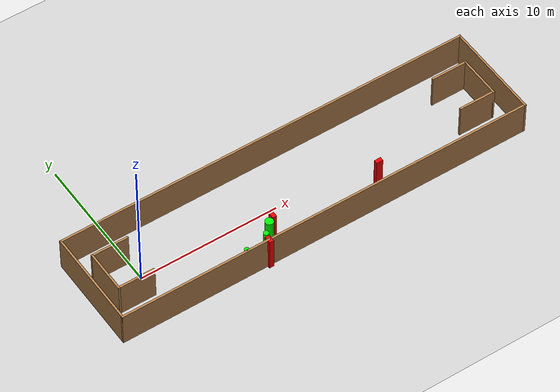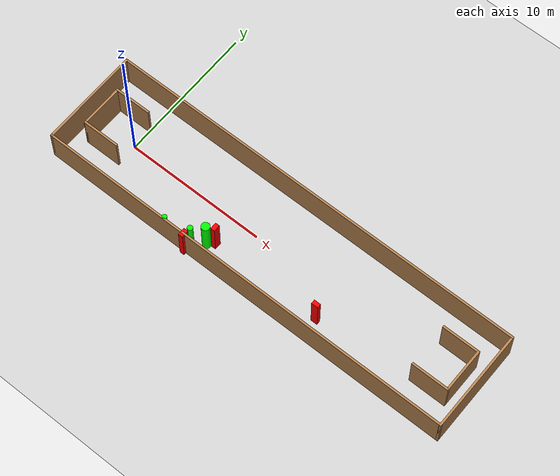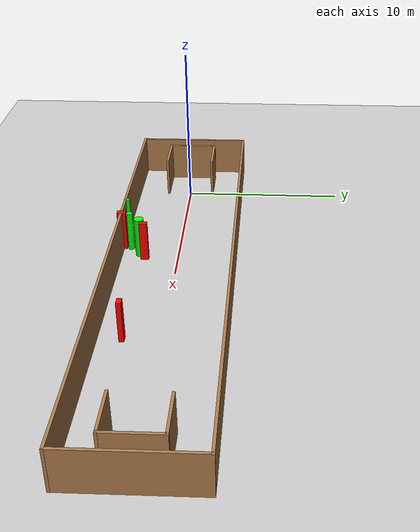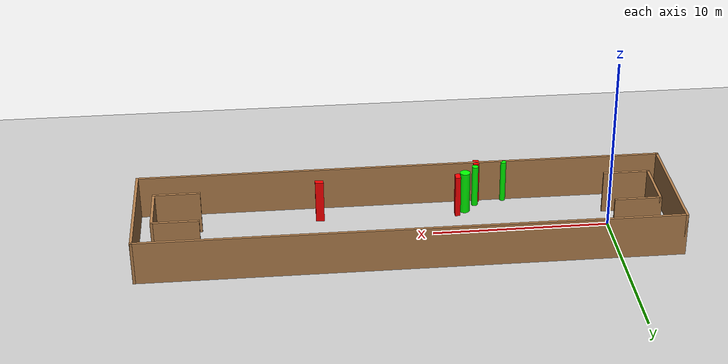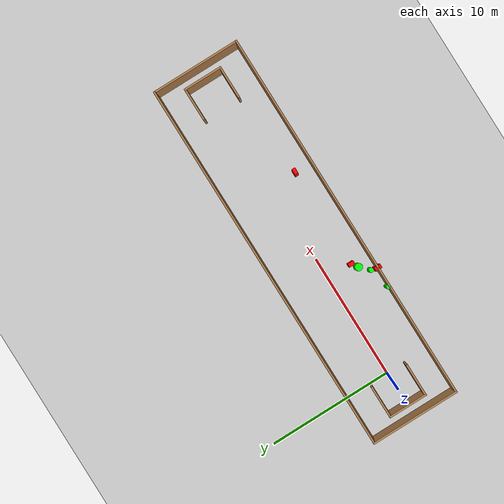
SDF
<sdf version="1.7">
 <world name="default">
  <light name="sun" type="directional">
   <pose>0 0 10 0 -0 0</pose>
   <diffuse>0.8 0.8 0.8 1</diffuse>
   <specular>0.2 0.2 0.2 1</specular>
   <attenuation>
    <range>1000</range>
    <constant>0.9</constant>
    <linear>0.01</linear>
    <quadratic>0.001</quadratic>
   </attenuation>
   <direction>-0.5 0.1 -0.9</direction>
   <spot><inner_angle>0</inner_angle><outer_angle>0</outer_angle><falloff>0</falloff></spot>
  </light>
  <model name="ground_plane">
   <static>1</static>
   <link name="link">
    <collision name="collision">
     <geometry><plane><normal>0 0 1</normal><size>100 100</size></plane></geometry>
     <surface>
      <contact><collide_bitmask>65535</collide_bitmask></contact>
      <friction><ode><mu>100</mu><mu2>50</mu2></ode></friction>
     </surface>
    </collision>
    <visual name="visual">
     <cast_shadows>0</cast_shadows>
     <geometry><plane><normal>0 0 1</normal><size>100 100</size></plane></geometry>
     <material>
      <script><uri>file://media/materials/scripts/gazebo.material</uri><name>Gazebo/Grey</name></script>
     </material>
    </visual>
   </link>
  </model>
  <gravity>0 0 -9.8</gravity>
  <magnetic_field>6e-06 2.3e-05 -4.2e-05</magnetic_field>
  <atmosphere type="adiabatic"/>
  <physics type="ode">
   <max_step_size>0.001</max_step_size>
   <real_time_factor>1</real_time_factor>
   <real_time_update_rate>1000</real_time_update_rate>
  </physics>
  <scene><ambient>0.4 0.4 0.4 1</ambient><background>0.7 0.7 0.7 1</background><shadows>1</shadows></scene>
  <spherical_coordinates>
   <surface_model>EARTH_WGS84</surface_model>
   <latitude_deg>0</latitude_deg>
   <longitude_deg>0</longitude_deg>
   <elevation>0</elevation>
   <heading_deg>0</heading_deg>
  </spherical_coordinates>
  <model name="my_base_walls">
   <link name="Wall_0">
    <collision name="Wall_0_Collision">
     <geometry><box><size>7.15 0.15 2.5</size></box></geometry>
     <pose>0 0 1.25 0 -0 0</pose>
    </collision>
    <visual name="Wall_0_Visual">
     <pose>0 0 1.25 0 -0 0</pose>
     <geometry><box><size>7.15 0.15 2.5</size></box></geometry>
     <material>
      <script><uri>file://media/materials/scripts/gazebo.material</uri><name>Gazebo/Wood</name></script>
      <ambient>1 1 1 1</ambient>
     </material>
     <meta><layer>0</layer></meta>
    </visual>
    <pose>-15 0 0 0 -0 1.5708</pose>
   </link>
   <link name="Wall_10">
    <collision name="Wall_10_Collision">
     <geometry><box><size>2.65 0.15 2.5</size></box></geometry>
     <pose>0 0 1.25 0 -0 0</pose>
    </collision>
    <visual name="Wall_10_Visual">
     <pose>0 0 1.25 0 -0 0</pose>
     <geometry><box><size>2.65 0.15 2.5</size></box></geometry>
     <material>
      <script><uri>file://media/materials/scripts/gazebo.material</uri><name>Gazebo/Wood</name></script>
      <ambient>1 1 1 1</ambient>
     </material>
     <meta><layer>0</layer></meta>
    </visual>
    <pose>-12.75 -1.5 0 0 -0 0</pose>
   </link>
   <link name="Wall_12">
    <collision name="Wall_12_Collision">
     <geometry><box><size>2.65 0.15 2.5</size></box></geometry>
     <pose>0 0 1.25 0 -0 0</pose>
    </collision>
    <visual name="Wall_12_Visual">
     <pose>0 0 1.25 0 -0 0</pose>
     <geometry><box><size>2.65 0.15 2.5</size></box></geometry>
     <material>
      <script><uri>file://media/materials/scripts/gazebo.material</uri><name>Gazebo/Wood</name></script>
      <ambient>1 1 1 1</ambient>
     </material>
     <meta><layer>0</layer></meta>
    </visual>
    <pose>-12.75 1.5 0 0 -0 0</pose>
   </link>
   <link name="Wall_14">
    <collision name="Wall_14_Collision">
     <geometry><box><size>3.15 0.15 2.5</size></box></geometry>
     <pose>0 0 1.25 0 -0 0</pose>
    </collision>
    <visual name="Wall_14_Visual">
     <pose>0 0 1.25 0 -0 0</pose>
     <geometry><box><size>3.15 0.15 2.5</size></box></geometry>
     <material>
      <script><uri>file://media/materials/scripts/gazebo.material</uri><name>Gazebo/Wood</name></script>
      <ambient>1 1 1 1</ambient>
     </material>
     <meta><layer>0</layer></meta>
    </visual>
    <pose>14 0 0 0 -0 -1.5708</pose>
   </link>
   <link name="Wall_15">
    <collision name="Wall_15_Collision">
     <geometry><box><size>2.65 0.15 2.5</size></box></geometry>
     <pose>0 0 1.25 0 -0 0</pose>
    </collision>
    <visual name="Wall_15_Visual">
     <pose>0 0 1.25 0 -0 0</pose>
     <geometry><box><size>2.65 0.15 2.5</size></box></geometry>
     <material>
      <script><uri>file://media/materials/scripts/gazebo.material</uri><name>Gazebo/Wood</name></script>
      <ambient>1 1 1 1</ambient>
     </material>
     <meta><layer>0</layer></meta>
    </visual>
    <pose>12.75 -1.5 0 0 -0 3.14159</pose>
   </link>
   <link name="Wall_17">
    <collision name="Wall_17_Collision">
     <geometry><box><size>2.65 0.15 2.5</size></box></geometry>
     <pose>0 0 1.25 0 -0 0</pose>
    </collision>
    <visual name="Wall_17_Visual">
     <pose>0 0 1.25 0 -0 0</pose>
     <geometry><box><size>2.65 0.15 2.5</size></box></geometry>
     <material>
      <script><uri>file://media/materials/scripts/gazebo.material</uri><name>Gazebo/Wood</name></script>
      <ambient>1 1 1 1</ambient>
     </material>
     <meta><layer>0</layer></meta>
    </visual>
    <pose>12.75 1.5 0 0 -0 3.14159</pose>
   </link>
   <link name="Wall_2">
    <collision name="Wall_2_Collision">
     <geometry><box><size>30.15 0.15 2.5</size></box></geometry>
     <pose>0 0 1.25 0 -0 0</pose>
    </collision>
    <visual name="Wall_2_Visual">
     <pose>0 0 1.25 0 -0 0</pose>
     <geometry><box><size>30.15 0.15 2.5</size></box></geometry>
     <material>
      <script><uri>file://media/materials/scripts/gazebo.material</uri><name>Gazebo/Wood</name></script>
      <ambient>1 1 1 1</ambient>
     </material>
     <meta><layer>0</layer></meta>
    </visual>
    <pose>-0 -3.5 0 0 -0 0</pose>
   </link>
   <link name="Wall_4">
    <collision name="Wall_4_Collision">
     <geometry><box><size>30.15 0.15 2.5</size></box></geometry>
     <pose>0 0 1.25 0 -0 0</pose>
    </collision>
    <visual name="Wall_4_Visual">
     <pose>0 0 1.25 0 -0 0</pose>
     <geometry><box><size>30.15 0.15 2.5</size></box></geometry>
     <material>
      <script><uri>file://media/materials/scripts/gazebo.material</uri><name>Gazebo/Wood</name></script>
      <ambient>1 1 1 1</ambient>
     </material>
     <meta><layer>0</layer></meta>
    </visual>
    <pose>-0 3.5 0 0 -0 0</pose>
   </link>
   <link name="Wall_6">
    <collision name="Wall_6_Collision">
     <geometry><box><size>7.15 0.15 2.5</size></box></geometry>
     <pose>0 0 1.25 0 -0 0</pose>
    </collision>
    <visual name="Wall_6_Visual">
     <pose>0 0 1.25 0 -0 0</pose>
     <geometry><box><size>7.15 0.15 2.5</size></box></geometry>
     <material>
      <script><uri>file://media/materials/scripts/gazebo.material</uri><name>Gazebo/Wood</name></script>
      <ambient>1 1 1 1</ambient>
     </material>
     <meta><layer>0</layer></meta>
    </visual>
    <pose>15 0 0 0 -0 -1.5708</pose>
   </link>
   <link name="Wall_9">
    <collision name="Wall_9_Collision">
     <geometry><box><size>3.15 0.15 2.5</size></box></geometry>
     <pose>0 0 1.25 0 -0 0</pose>
    </collision>
    <visual name="Wall_9_Visual">
     <pose>0 0 1.25 0 -0 0</pose>
     <geometry><box><size>3.15 0.15 2.5</size></box></geometry>
     <material>
      <script><uri>file://media/materials/scripts/gazebo.material</uri><name>Gazebo/Wood</name></script>
      <ambient>1 1 1 1</ambient>
     </material>
     <meta><layer>0</layer></meta>
    </visual>
    <pose>-14 0 0 0 -0 -1.5708</pose>
   </link>
   <static>1</static>
   <pose>11.5 0 0 0 -0 0</pose>
  </model>
  <model name="cylinder1">
   <static>1</static>
   <link name="link">
    <inertial>
     <mass>1</mass>
     <inertia><ixx>0.5</ixx><ixy>0</ixy><ixz>0</ixz><iyy>0.5</iyy><iyz>0</iyz><izz>1</izz></inertia>
    </inertial>
    <collision name="collision">
     <geometry><cylinder><radius>0.18763403402497508</radius><length>2.5</length></cylinder></geometry>
    </collision>
    <visual name="visual">
     <geometry><cylinder><radius>0.18763403402497508</radius><length>2.5</length></cylinder></geometry>
     <material>
      <ambient>0 1 0 1</ambient>
      <diffuse>0 1 0 1</diffuse>
      <specular>0.1 0.1 0.1 1</specular>
      <emissive>0 0 0 0</emissive>
     </material>
    </visual>
   </link>
   <pose>7.242268193993439 -2.978963688259479 1.25 0 0 0</pose>
  </model>
  <model name="cylinder2">
   <static>1</static>
   <link name="link">
    <inertial>
     <mass>1</mass>
     <inertia><ixx>0.5</ixx><ixy>0</ixy><ixz>0</ixz><iyy>0.5</iyy><iyz>0</iyz><izz>1</izz></inertia>
    </inertial>
    <collision name="collision">
     <geometry><cylinder><radius>0.16372539880273732</radius><length>2.5</length></cylinder></geometry>
    </collision>
    <visual name="visual">
     <geometry><cylinder><radius>0.16372539880273732</radius><length>2.5</length></cylinder></geometry>
     <material>
      <ambient>0 1 0 1</ambient>
      <diffuse>0 1 0 1</diffuse>
      <specular>0.1 0.1 0.1 1</specular>
      <emissive>0 0 0 0</emissive>
     </material>
    </visual>
   </link>
   <pose>5.55311690184363 -3.380131231802217 1.25 0 0 0</pose>
  </model>
  <model name="cylinder3">
   <static>1</static>
   <link name="link">
    <inertial>
     <mass>1</mass>
     <inertia><ixx>0.5</ixx><ixy>0</ixy><ixz>0</ixz><iyy>0.5</iyy><iyz>0</iyz><izz>1</izz></inertia>
    </inertial>
    <collision name="collision">
     <geometry><cylinder><radius>0.2920865873546665</radius><length>2.5</length></cylinder></geometry>
    </collision>
    <visual name="visual">
     <geometry><cylinder><radius>0.2920865873546665</radius><length>2.5</length></cylinder></geometry>
     <material>
      <ambient>0 1 0 1</ambient>
      <diffuse>0 1 0 1</diffuse>
      <specular>0.1 0.1 0.1 1</specular>
      <emissive>0 0 0 0</emissive>
     </material>
    </visual>
   </link>
   <pose>7.914485152105986 -2.3233378459400162 1.25 0 0 0</pose>
  </model>
  <model name="box1">
   <static>1</static>
   <link name="link">
    <inertial>
     <mass>1</mass>
     <inertia><ixx>0.083</ixx><ixy>0</ixy><ixz>0</ixz><iyy>0.083</iyy><iyz>0</iyz><izz>0.083</izz></inertia>
    </inertial>
    <collision name="collision">
     <geometry><box><size>0.33035572845305816 0.5228002810644592 2.5</size></box></geometry>
    </collision>
    <visual name="visual">
     <geometry><box><size>0.33035572845305816 0.5228002810644592 2.5</size></box></geometry>
     <material>
      <ambient>1 0 0 1</ambient>
      <diffuse>1 0 0 1</diffuse>
      <specular>0.1 0.1 0.1 1</specular>
      <emissive>0 0 0 0</emissive>
     </material>
    </visual>
    <sensor name="my_contact" type="contact">
     <contact><collision>box_collision</collision><topic>__default_topic__</topic></contact>
    </sensor>
   </link>
   <pose>7.1357243932105465 -3.4887869673574485 1.25 0 0 0</pose>
  </model>
  <model name="box2">
   <static>1</static>
   <link name="link">
    <inertial>
     <mass>1</mass>
     <inertia><ixx>0.083</ixx><ixy>0</ixy><ixz>0</ixz><iyy>0.083</iyy><iyz>0</iyz><izz>0.083</izz></inertia>
    </inertial>
    <collision name="collision">
     <geometry><box><size>0.4738153511682644 0.28335627199608127 2.5</size></box></geometry>
    </collision>
    <visual name="visual">
     <geometry><box><size>0.4738153511682644 0.28335627199608127 2.5</size></box></geometry>
     <material>
      <ambient>1 0 0 1</ambient>
      <diffuse>1 0 0 1</diffuse>
      <specular>0.1 0.1 0.1 1</specular>
      <emissive>0 0 0 0</emissive>
     </material>
    </visual>
    <sensor name="my_contact" type="contact">
     <contact><collision>box_collision</collision><topic>__default_topic__</topic></contact>
    </sensor>
   </link>
   <pose>16.257238134694607 -2.095909465171687 1.25 0 0 0</pose>
  </model>
  <model name="box3">
   <static>1</static>
   <link name="link">
    <inertial>
     <mass>1</mass>
     <inertia><ixx>0.083</ixx><ixy>0</ixy><ixz>0</ixz><iyy>0.083</iyy><iyz>0</iyz><izz>0.083</izz></inertia>
    </inertial>
    <collision name="collision">
     <geometry><box><size>0.2969541557621351 0.47934587432012427 2.5</size></box></geometry>
    </collision>
    <visual name="visual">
     <geometry><box><size>0.2969541557621351 0.47934587432012427 2.5</size></box></geometry>
     <material>
      <ambient>1 0 0 1</ambient>
      <diffuse>1 0 0 1</diffuse>
      <specular>0.1 0.1 0.1 1</specular>
      <emissive>0 0 0 0</emissive>
     </material>
    </visual>
    <sensor name="my_contact" type="contact">
     <contact><collision>box_collision</collision><topic>__default_topic__</topic></contact>
    </sensor>
   </link>
   <pose>8.38426227298102 -1.9923297593184346 1.25 0 0 0</pose>
  </model>
 </world>
</sdf>
